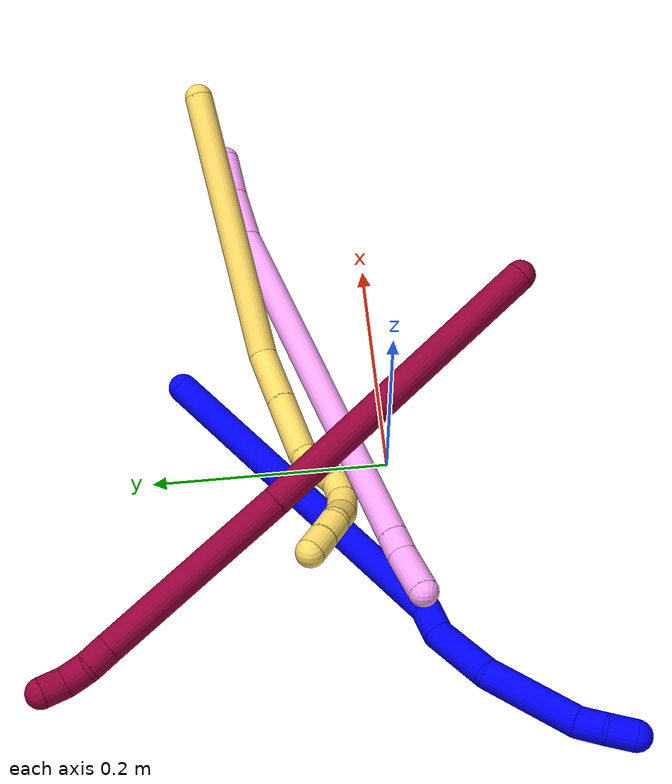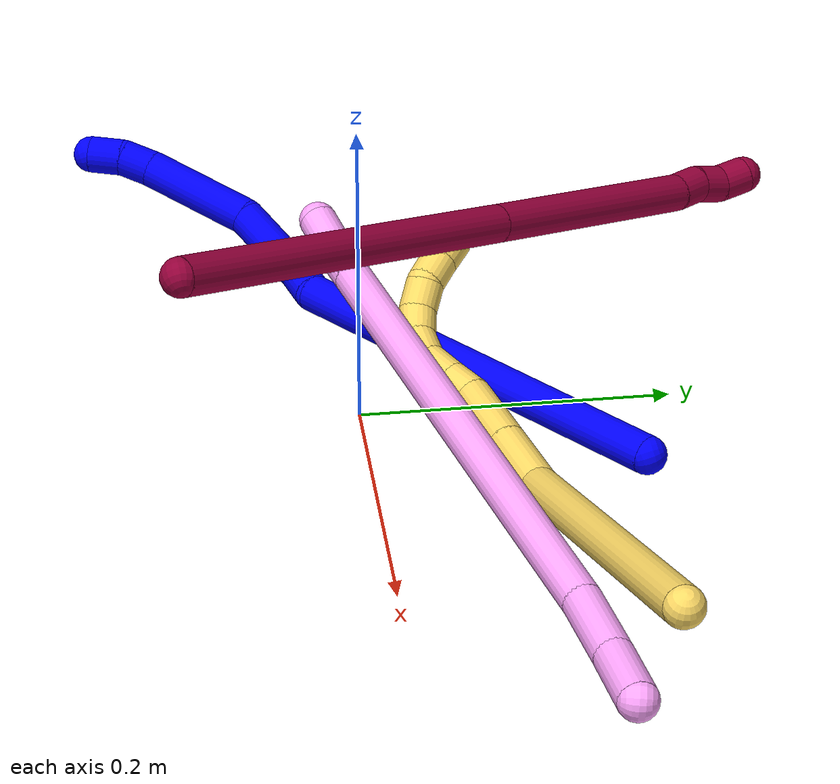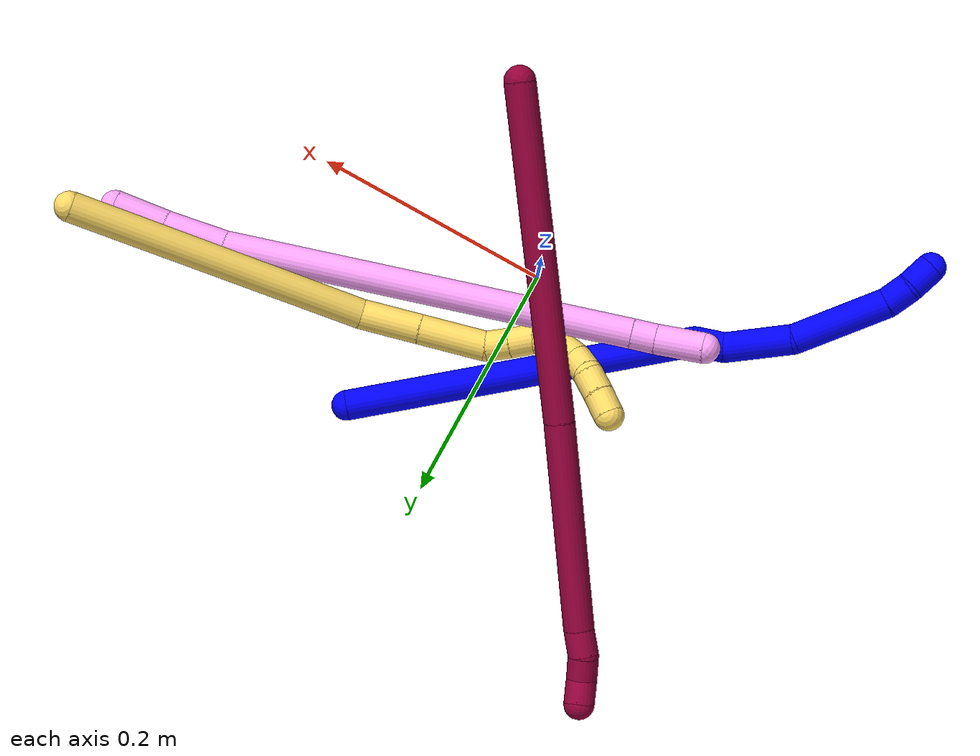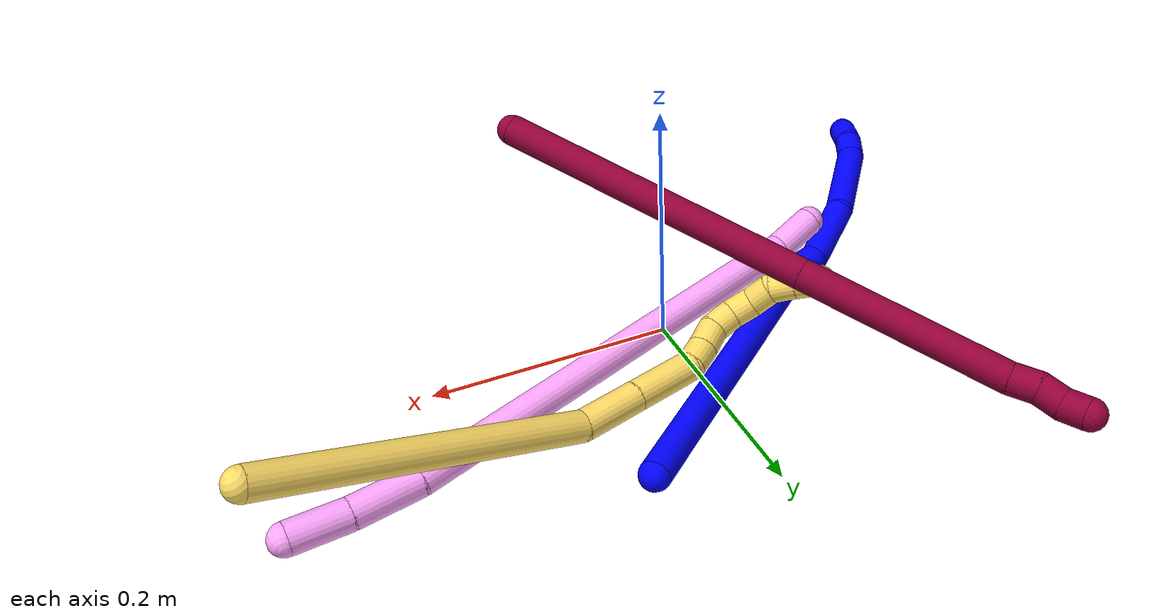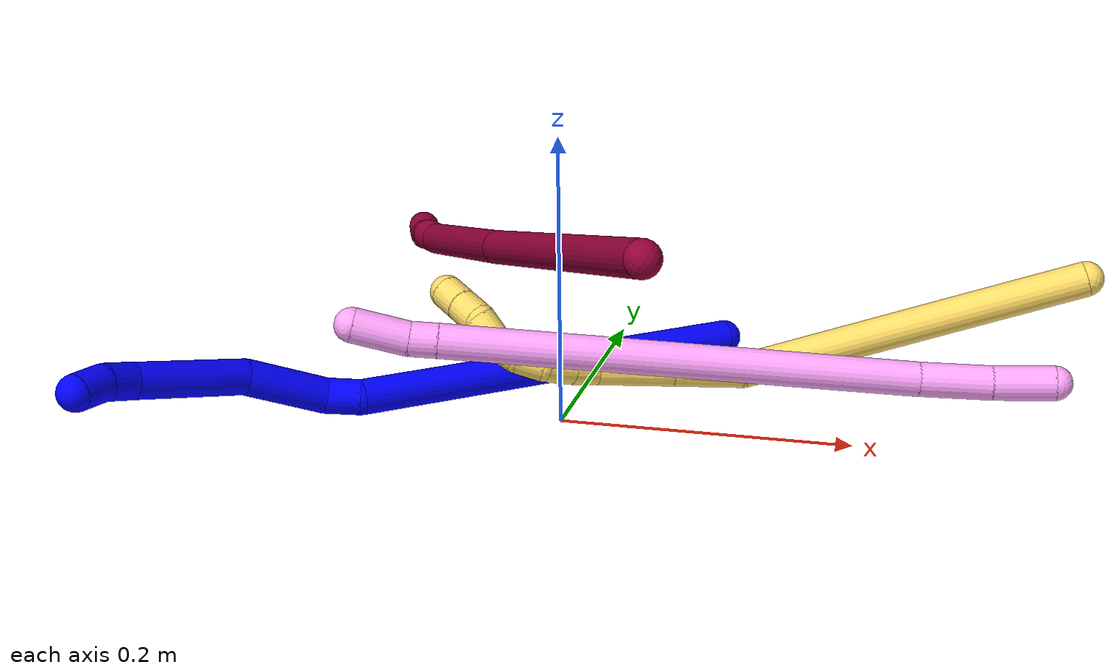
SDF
<sdf version="1.7">
 <world name="default">
  <model name="bin">
   <static>1</static>
   <link name="bottom">
    <collision name="collision-bottom">
     <pose>0 0 -0.01 0 -0 0</pose>
     <geometry><box><size>0.8 0.6 0.02</size></box></geometry>
     <surface>
      <friction><ode><mu>100</mu><mu2>100</mu2></ode></friction>
      <contact><collide_bitmask>65535</collide_bitmask></contact>
     </surface>
    </collision>
   </link>
   <link name="west_wall">
    <collision name="collision-west_wall">
     <pose>-0.41 0 0.1 0 -0 0</pose>
     <geometry><box><size>0.02 0.6 0.2</size></box></geometry>
     <surface>
      <friction><ode><mu>100</mu><mu2>100</mu2></ode></friction>
      <contact><collide_bitmask>65535</collide_bitmask></contact>
     </surface>
    </collision>
   </link>
   <link name="east_wall">
    <collision name="collision-east_wall">
     <pose>0.41 0 0.1 0 -0 0</pose>
     <geometry><box><size>0.02 0.6 0.2</size></box></geometry>
     <surface>
      <friction><ode><mu>100</mu><mu2>100</mu2></ode></friction>
      <contact><collide_bitmask>65535</collide_bitmask></contact>
     </surface>
    </collision>
   </link>
   <link name="south_wall">
    <collision name="collision-south_wall">
     <pose>0 -0.31 0.1 0 -0 0</pose>
     <geometry><box><size>0.8 0.02 0.2</size></box></geometry>
     <surface>
      <friction><ode><mu>100</mu><mu2>100</mu2></ode></friction>
      <contact><collide_bitmask>65535</collide_bitmask></contact>
     </surface>
    </collision>
   </link>
   <link name="north_wall">
    <collision name="collision-north_wall">
     <pose>0 0.31 0.1 0 -0 0</pose>
     <geometry><box><size>0.8 0.02 0.2</size></box></geometry>
     <surface>
      <friction><ode><mu>100</mu><mu2>100</mu2></ode></friction>
      <contact><collide_bitmask>65535</collide_bitmask></contact>
     </surface>
    </collision>
   </link>
  </model>
  <model name="1">
   <static>0</static>
   <link name="1">
    <collision name="collision-cylinder-e_1_1_4">
     <pose>-0.094525 -0.068926 0.08705 0.669722 -0.705259 -0.254724</pose>
     <geometry><cylinder><radius>0.0125</radius><length>0.291639</length></cylinder></geometry>
     <surface>
      <friction><ode><mu>1.16</mu><mu2>1.16</mu2><slip1>0</slip1><slip2>0</slip2></ode></friction>
      <contact><ode><kp>1e+06</kp><kd>1</kd><max_vel>0</max_vel><min_depth>0.001</min_depth></ode></contact>
     </surface>
    </collision>
    <visual name="visual-cylinder-e_1_1_4">
     <pose>-0.094525 -0.068926 0.08705 0.669722 -0.705259 -0.254724</pose>
     <geometry><cylinder><radius>0.0125</radius><length>0.291639</length></cylinder></geometry>
     <material><ambient>0 0 1 1</ambient></material>
    </visual>
    <collision name="collision-cylinder-e_2_4_5">
     <pose>-0.198238 -0.145485 0.17708 1.19846 -0.842543 -0.594006</pose>
     <geometry><cylinder><radius>0.0125</radius><length>0.024623</length></cylinder></geometry>
     <surface>
      <friction><ode><mu>1.16</mu><mu2>1.16</mu2><slip1>0</slip1><slip2>0</slip2></ode></friction>
      <contact><ode><kp>1e+06</kp><kd>1</kd><max_vel>0</max_vel><min_depth>0.001</min_depth></ode></contact>
     </surface>
    </collision>
    <visual name="visual-cylinder-e_2_4_5">
     <pose>-0.198238 -0.145485 0.17708 1.19846 -0.842543 -0.594006</pose>
     <geometry><cylinder><radius>0.0125</radius><length>0.024623</length></cylinder></geometry>
     <material><ambient>0 0 1 1</ambient></material>
    </visual>
    <collision name="collision-cylinder-e_3_5_6">
     <pose>-0.233493 -0.160409 0.191876 0.552977 -1.08139 -0.33748</pose>
     <geometry><cylinder><radius>0.0125</radius><length>0.059067</length></cylinder></geometry>
     <surface>
      <friction><ode><mu>1.16</mu><mu2>1.16</mu2><slip1>0</slip1><slip2>0</slip2></ode></friction>
      <contact><ode><kp>1e+06</kp><kd>1</kd><max_vel>0</max_vel><min_depth>0.001</min_depth></ode></contact>
     </surface>
    </collision>
    <visual name="visual-cylinder-e_3_5_6">
     <pose>-0.233493 -0.160409 0.191876 0.552977 -1.08139 -0.33748</pose>
     <geometry><cylinder><radius>0.0125</radius><length>0.059067</length></cylinder></geometry>
     <material><ambient>0 0 1 1</ambient></material>
    </visual>
    <collision name="collision-cylinder-e_4_6_7">
     <pose>-0.288019 -0.176665 0.230243 0.325569 -0.793081 -0.137323</pose>
     <geometry><cylinder><radius>0.0125</radius><length>0.079884</length></cylinder></geometry>
     <surface>
      <friction><ode><mu>1.16</mu><mu2>1.16</mu2><slip1>0</slip1><slip2>0</slip2></ode></friction>
      <contact><ode><kp>1e+06</kp><kd>1</kd><max_vel>0</max_vel><min_depth>0.001</min_depth></ode></contact>
     </surface>
    </collision>
    <visual name="visual-cylinder-e_4_6_7">
     <pose>-0.288019 -0.176665 0.230243 0.325569 -0.793081 -0.137323</pose>
     <geometry><cylinder><radius>0.0125</radius><length>0.079884</length></cylinder></geometry>
     <material><ambient>0 0 1 1</ambient></material>
    </visual>
    <collision name="collision-cylinder-e_5_7_8">
     <pose>-0.323547 -0.185663 0.265273 0.004011 -0.695082 -0.001453</pose>
     <geometry><cylinder><radius>0.0125</radius><length>0.022073</length></cylinder></geometry>
     <surface>
      <friction><ode><mu>1.16</mu><mu2>1.16</mu2><slip1>0</slip1><slip2>0</slip2></ode></friction>
      <contact><ode><kp>1e+06</kp><kd>1</kd><max_vel>0</max_vel><min_depth>0.001</min_depth></ode></contact>
     </surface>
    </collision>
    <visual name="visual-cylinder-e_5_7_8">
     <pose>-0.323547 -0.185663 0.265273 0.004011 -0.695082 -0.001453</pose>
     <geometry><cylinder><radius>0.0125</radius><length>0.022073</length></cylinder></geometry>
     <material><ambient>0 0 1 1</ambient></material>
    </visual>
    <collision name="collision-cylinder-e_6_8_2">
     <pose>-0.335471 -0.18653 0.283981 0.081236 -0.441825 -0.018253</pose>
     <geometry><cylinder><radius>0.0125</radius><length>0.022714</length></cylinder></geometry>
     <surface>
      <friction><ode><mu>1.16</mu><mu2>1.16</mu2><slip1>0</slip1><slip2>0</slip2></ode></friction>
      <contact><ode><kp>1e+06</kp><kd>1</kd><max_vel>0</max_vel><min_depth>0.001</min_depth></ode></contact>
     </surface>
    </collision>
    <visual name="visual-cylinder-e_6_8_2">
     <pose>-0.335471 -0.18653 0.283981 0.081236 -0.441825 -0.018253</pose>
     <geometry><cylinder><radius>0.0125</radius><length>0.022714</length></cylinder></geometry>
     <material><ambient>0 0 1 1</ambient></material>
    </visual>
    <collision name="collision-sphere-2">
     <pose>-0.340327 -0.187363 0.294214 0 -0 0</pose>
     <geometry><sphere><radius>0.0125</radius></sphere></geometry>
     <surface>
      <friction><ode><mu>1.16</mu><mu2>1.16</mu2><slip1>0</slip1><slip2>0</slip2></ode></friction>
      <contact><ode><kp>1e+06</kp><kd>1</kd><max_vel>0</max_vel><min_depth>0.001</min_depth></ode></contact>
     </surface>
    </collision>
    <visual name="visual-sphere-2">
     <pose>-0.340327 -0.187363 0.294214 0 -0 0</pose>
     <geometry><sphere><radius>0.0125</radius></sphere></geometry>
     <material><ambient>0 0 1 1</ambient></material>
    </visual>
    <collision name="collision-sphere-4">
     <pose>-0.189049 -0.137852 0.174099 0 -0 0</pose>
     <geometry><sphere><radius>0.0125</radius></sphere></geometry>
     <surface>
      <friction><ode><mu>1.16</mu><mu2>1.16</mu2><slip1>0</slip1><slip2>0</slip2></ode></friction>
      <contact><ode><kp>1e+06</kp><kd>1</kd><max_vel>0</max_vel><min_depth>0.001</min_depth></ode></contact>
     </surface>
    </collision>
    <visual name="visual-sphere-4">
     <pose>-0.189049 -0.137852 0.174099 0 -0 0</pose>
     <geometry><sphere><radius>0.0125</radius></sphere></geometry>
     <material><ambient>0 0 1 1</ambient></material>
    </visual>
    <collision name="collision-sphere-1">
     <geometry><sphere><radius>0.0125</radius></sphere></geometry>
     <surface>
      <friction><ode><mu>1.16</mu><mu2>1.16</mu2><slip1>0</slip1><slip2>0</slip2></ode></friction>
      <contact><ode><kp>1e+06</kp><kd>1</kd><max_vel>0</max_vel><min_depth>0.001</min_depth></ode></contact>
     </surface>
    </collision>
    <visual name="visual-sphere-1">
     <geometry><sphere><radius>0.0125</radius></sphere></geometry>
     <material><ambient>0 0 1 1</ambient></material>
    </visual>
    <collision name="collision-sphere-8">
     <pose>-0.330615 -0.185697 0.273749 0 -0 0</pose>
     <geometry><sphere><radius>0.0125</radius></sphere></geometry>
     <surface>
      <friction><ode><mu>1.16</mu><mu2>1.16</mu2><slip1>0</slip1><slip2>0</slip2></ode></friction>
      <contact><ode><kp>1e+06</kp><kd>1</kd><max_vel>0</max_vel><min_depth>0.001</min_depth></ode></contact>
     </surface>
    </collision>
    <visual name="visual-sphere-8">
     <pose>-0.330615 -0.185697 0.273749 0 -0 0</pose>
     <geometry><sphere><radius>0.0125</radius></sphere></geometry>
     <material><ambient>0 0 1 1</ambient></material>
    </visual>
    <collision name="collision-sphere-5">
     <pose>-0.207427 -0.153117 0.180061 0 -0 0</pose>
     <geometry><sphere><radius>0.0125</radius></sphere></geometry>
     <surface>
      <friction><ode><mu>1.16</mu><mu2>1.16</mu2><slip1>0</slip1><slip2>0</slip2></ode></friction>
      <contact><ode><kp>1e+06</kp><kd>1</kd><max_vel>0</max_vel><min_depth>0.001</min_depth></ode></contact>
     </surface>
    </collision>
    <visual name="visual-sphere-5">
     <pose>-0.207427 -0.153117 0.180061 0 -0 0</pose>
     <geometry><sphere><radius>0.0125</radius></sphere></geometry>
     <material><ambient>0 0 1 1</ambient></material>
    </visual>
    <collision name="collision-sphere-6">
     <pose>-0.25956 -0.167701 0.20369 0 -0 0</pose>
     <geometry><sphere><radius>0.0125</radius></sphere></geometry>
     <surface>
      <friction><ode><mu>1.16</mu><mu2>1.16</mu2><slip1>0</slip1><slip2>0</slip2></ode></friction>
      <contact><ode><kp>1e+06</kp><kd>1</kd><max_vel>0</max_vel><min_depth>0.001</min_depth></ode></contact>
     </surface>
    </collision>
    <visual name="visual-sphere-6">
     <pose>-0.25956 -0.167701 0.20369 0 -0 0</pose>
     <geometry><sphere><radius>0.0125</radius></sphere></geometry>
     <material><ambient>0 0 1 1</ambient></material>
    </visual>
    <collision name="collision-sphere-7">
     <pose>-0.316479 -0.185629 0.256797 0 -0 0</pose>
     <geometry><sphere><radius>0.0125</radius></sphere></geometry>
     <surface>
      <friction><ode><mu>1.16</mu><mu2>1.16</mu2><slip1>0</slip1><slip2>0</slip2></ode></friction>
      <contact><ode><kp>1e+06</kp><kd>1</kd><max_vel>0</max_vel><min_depth>0.001</min_depth></ode></contact>
     </surface>
    </collision>
    <visual name="visual-sphere-7">
     <pose>-0.316479 -0.185629 0.256797 0 -0 0</pose>
     <geometry><sphere><radius>0.0125</radius></sphere></geometry>
     <material><ambient>0 0 1 1</ambient></material>
    </visual>
    <inertial>
     <pose>-0.168019 -0.111213 0.143559 0 -0 0</pose>
     <mass>0.5</mass>
     <inertia>
      <ixx>0.001143</ixx>
      <ixy>0</ixy>
      <ixz>0</ixz>
      <iyy>0.001434</iyy>
      <iyz>0</iyz>
      <izz>0.002423</izz>
     </inertia>
    </inertial>
   </link>
   <pose>0.086305 0.168958 0.011499 1.98727 0.80471 0.323793</pose>
  </model>
  <model name="4">
   <static>0</static>
   <link name="4">
    <collision name="collision-cylinder-e_1_1_4">
     <pose>-0.021352 -0.000818 -0.005868 3.00302 -1.30011 -2.95954</pose>
     <geometry><cylinder><radius>0.0125</radius><length>0.044317</length></cylinder></geometry>
     <surface>
      <friction><ode><mu>1.16</mu><mu2>1.16</mu2><slip1>0</slip1><slip2>0</slip2></ode></friction>
      <contact><ode><kp>1e+06</kp><kd>1</kd><max_vel>0</max_vel><min_depth>0.001</min_depth></ode></contact>
     </surface>
    </collision>
    <visual name="visual-cylinder-e_1_1_4">
     <pose>-0.021352 -0.000818 -0.005868 3.00302 -1.30011 -2.95954</pose>
     <geometry><cylinder><radius>0.0125</radius><length>0.044317</length></cylinder></geometry>
     <material><ambient>1 0.65098 0.996078 1</ambient></material>
    </visual>
    <collision name="collision-cylinder-e_2_4_5">
     <pose>-0.067408 -0.004289 -0.020033 2.83221 -1.23182 -2.70786</pose>
     <geometry><cylinder><radius>0.0125</radius><length>0.05239</length></cylinder></geometry>
     <surface>
      <friction><ode><mu>1.16</mu><mu2>1.16</mu2><slip1>0</slip1><slip2>0</slip2></ode></friction>
      <contact><ode><kp>1e+06</kp><kd>1</kd><max_vel>0</max_vel><min_depth>0.001</min_depth></ode></contact>
     </surface>
    </collision>
    <visual name="visual-cylinder-e_2_4_5">
     <pose>-0.067408 -0.004289 -0.020033 2.83221 -1.23182 -2.70786</pose>
     <geometry><cylinder><radius>0.0125</radius><length>0.05239</length></cylinder></geometry>
     <material><ambient>1 0.65098 0.996078 1</ambient></material>
    </visual>
    <collision name="collision-cylinder-e_3_5_6">
     <pose>-0.244983 -0.03426 -0.100627 2.78031 -1.1027 -2.56422</pose>
     <geometry><cylinder><radius>0.0125</radius><length>0.342593</length></cylinder></geometry>
     <surface>
      <friction><ode><mu>1.16</mu><mu2>1.16</mu2><slip1>0</slip1><slip2>0</slip2></ode></friction>
      <contact><ode><kp>1e+06</kp><kd>1</kd><max_vel>0</max_vel><min_depth>0.001</min_depth></ode></contact>
     </surface>
    </collision>
    <visual name="visual-cylinder-e_3_5_6">
     <pose>-0.244983 -0.03426 -0.100627 2.78031 -1.1027 -2.56422</pose>
     <geometry><cylinder><radius>0.0125</radius><length>0.342593</length></cylinder></geometry>
     <material><ambient>1 0.65098 0.996078 1</ambient></material>
    </visual>
    <collision name="collision-cylinder-e_4_6_7">
     <pose>-0.406941 -0.063047 -0.177084 2.80239 -1.11892 -2.60771</pose>
     <geometry><cylinder><radius>0.0125</radius><length>0.020204</length></cylinder></geometry>
     <surface>
      <friction><ode><mu>1.16</mu><mu2>1.16</mu2><slip1>0</slip1><slip2>0</slip2></ode></friction>
      <contact><ode><kp>1e+06</kp><kd>1</kd><max_vel>0</max_vel><min_depth>0.001</min_depth></ode></contact>
     </surface>
    </collision>
    <visual name="visual-cylinder-e_4_6_7">
     <pose>-0.406941 -0.063047 -0.177084 2.80239 -1.11892 -2.60771</pose>
     <geometry><cylinder><radius>0.0125</radius><length>0.020204</length></cylinder></geometry>
     <material><ambient>1 0.65098 0.996078 1</ambient></material>
    </visual>
    <collision name="collision-cylinder-e_5_7_2">
     <pose>-0.43297 -0.071147 -0.190131 2.50048 -0.991193 -2.04008</pose>
     <geometry><cylinder><radius>0.0125</radius><length>0.040496</length></cylinder></geometry>
     <surface>
      <friction><ode><mu>1.16</mu><mu2>1.16</mu2><slip1>0</slip1><slip2>0</slip2></ode></friction>
      <contact><ode><kp>1e+06</kp><kd>1</kd><max_vel>0</max_vel><min_depth>0.001</min_depth></ode></contact>
     </surface>
    </collision>
    <visual name="visual-cylinder-e_5_7_2">
     <pose>-0.43297 -0.071147 -0.190131 2.50048 -0.991193 -2.04008</pose>
     <geometry><cylinder><radius>0.0125</radius><length>0.040496</length></cylinder></geometry>
     <material><ambient>1 0.65098 0.996078 1</ambient></material>
    </visual>
    <collision name="collision-sphere-2">
     <pose>-0.449911 -0.077779 -0.199019 0 -0 0</pose>
     <geometry><sphere><radius>0.0125</radius></sphere></geometry>
     <surface>
      <friction><ode><mu>1.16</mu><mu2>1.16</mu2><slip1>0</slip1><slip2>0</slip2></ode></friction>
      <contact><ode><kp>1e+06</kp><kd>1</kd><max_vel>0</max_vel><min_depth>0.001</min_depth></ode></contact>
     </surface>
    </collision>
    <visual name="visual-sphere-2">
     <pose>-0.449911 -0.077779 -0.199019 0 -0 0</pose>
     <geometry><sphere><radius>0.0125</radius></sphere></geometry>
     <material><ambient>1 0.65098 0.996078 1</ambient></material>
    </visual>
    <collision name="collision-sphere-7">
     <pose>-0.416029 -0.064514 -0.181244 0 -0 0</pose>
     <geometry><sphere><radius>0.0125</radius></sphere></geometry>
     <surface>
      <friction><ode><mu>1.16</mu><mu2>1.16</mu2><slip1>0</slip1><slip2>0</slip2></ode></friction>
      <contact><ode><kp>1e+06</kp><kd>1</kd><max_vel>0</max_vel><min_depth>0.001</min_depth></ode></contact>
     </surface>
    </collision>
    <visual name="visual-sphere-7">
     <pose>-0.416029 -0.064514 -0.181244 0 -0 0</pose>
     <geometry><sphere><radius>0.0125</radius></sphere></geometry>
     <material><ambient>1 0.65098 0.996078 1</ambient></material>
    </visual>
    <collision name="collision-sphere-6">
     <pose>-0.397853 -0.061579 -0.172924 0 -0 0</pose>
     <geometry><sphere><radius>0.0125</radius></sphere></geometry>
     <surface>
      <friction><ode><mu>1.16</mu><mu2>1.16</mu2><slip1>0</slip1><slip2>0</slip2></ode></friction>
      <contact><ode><kp>1e+06</kp><kd>1</kd><max_vel>0</max_vel><min_depth>0.001</min_depth></ode></contact>
     </surface>
    </collision>
    <visual name="visual-sphere-6">
     <pose>-0.397853 -0.061579 -0.172924 0 -0 0</pose>
     <geometry><sphere><radius>0.0125</radius></sphere></geometry>
     <material><ambient>1 0.65098 0.996078 1</ambient></material>
    </visual>
    <collision name="collision-sphere-5">
     <pose>-0.092112 -0.006941 -0.02833 0 -0 0</pose>
     <geometry><sphere><radius>0.0125</radius></sphere></geometry>
     <surface>
      <friction><ode><mu>1.16</mu><mu2>1.16</mu2><slip1>0</slip1><slip2>0</slip2></ode></friction>
      <contact><ode><kp>1e+06</kp><kd>1</kd><max_vel>0</max_vel><min_depth>0.001</min_depth></ode></contact>
     </surface>
    </collision>
    <visual name="visual-sphere-5">
     <pose>-0.092112 -0.006941 -0.02833 0 -0 0</pose>
     <geometry><sphere><radius>0.0125</radius></sphere></geometry>
     <material><ambient>1 0.65098 0.996078 1</ambient></material>
    </visual>
    <collision name="collision-sphere-1">
     <geometry><sphere><radius>0.0125</radius></sphere></geometry>
     <surface>
      <friction><ode><mu>1.16</mu><mu2>1.16</mu2><slip1>0</slip1><slip2>0</slip2></ode></friction>
      <contact><ode><kp>1e+06</kp><kd>1</kd><max_vel>0</max_vel><min_depth>0.001</min_depth></ode></contact>
     </surface>
    </collision>
    <visual name="visual-sphere-1">
     <geometry><sphere><radius>0.0125</radius></sphere></geometry>
     <material><ambient>1 0.65098 0.996078 1</ambient></material>
    </visual>
    <collision name="collision-sphere-4">
     <pose>-0.042704 -0.001637 -0.011736 0 -0 0</pose>
     <geometry><sphere><radius>0.0125</radius></sphere></geometry>
     <surface>
      <friction><ode><mu>1.16</mu><mu2>1.16</mu2><slip1>0</slip1><slip2>0</slip2></ode></friction>
      <contact><ode><kp>1e+06</kp><kd>1</kd><max_vel>0</max_vel><min_depth>0.001</min_depth></ode></contact>
     </surface>
    </collision>
    <visual name="visual-sphere-4">
     <pose>-0.042704 -0.001637 -0.011736 0 -0 0</pose>
     <geometry><sphere><radius>0.0125</radius></sphere></geometry>
     <material><ambient>1 0.65098 0.996078 1</ambient></material>
    </visual>
    <inertial>
     <pose>-0.228325 -0.032306 -0.094122 0 -0 0</pose>
     <mass>0.5</mass>
     <inertia>
      <ixx>-0.002151</ixx>
      <ixy>0</ixy>
      <ixz>0</ixz>
      <iyy>0.002405</iyy>
      <iyz>0</iyz>
      <izz>0.003557</izz>
     </inertia>
    </inertial>
   </link>
   <pose>0.332732 0.116941 0.01299 -1.63393 -0.089514 -0.14062</pose>
  </model>
  <model name="5">
   <static>0</static>
   <link name="5">
    <collision name="collision-cylinder-e_1_1_4">
     <pose>-0.096949 -0.008967 -0.079108 3.02872 -0.883261 -2.90372</pose>
     <geometry><cylinder><radius>0.0125</radius><length>0.250898</length></cylinder></geometry>
     <surface>
      <friction><ode><mu>1.16</mu><mu2>1.16</mu2><slip1>0</slip1><slip2>0</slip2></ode></friction>
      <contact><ode><kp>1e+06</kp><kd>1</kd><max_vel>0</max_vel><min_depth>0.001</min_depth></ode></contact>
     </surface>
    </collision>
    <visual name="visual-cylinder-e_1_1_4">
     <pose>-0.096949 -0.008967 -0.079108 3.02872 -0.883261 -2.90372</pose>
     <geometry><cylinder><radius>0.0125</radius><length>0.250898</length></cylinder></geometry>
     <material><ambient>1 0.858824 0.4 1</ambient></material>
    </visual>
    <collision name="collision-cylinder-e_2_4_5">
     <pose>-0.217229 -0.02195 -0.166777 2.70308 -1.18573 -2.50272</pose>
     <geometry><cylinder><radius>0.0125</radius><length>0.05035</length></cylinder></geometry>
     <surface>
      <friction><ode><mu>1.16</mu><mu2>1.16</mu2><slip1>0</slip1><slip2>0</slip2></ode></friction>
      <contact><ode><kp>1e+06</kp><kd>1</kd><max_vel>0</max_vel><min_depth>0.001</min_depth></ode></contact>
     </surface>
    </collision>
    <visual name="visual-cylinder-e_2_4_5">
     <pose>-0.217229 -0.02195 -0.166777 2.70308 -1.18573 -2.50272</pose>
     <geometry><cylinder><radius>0.0125</radius><length>0.05035</length></cylinder></geometry>
     <material><ambient>1 0.858824 0.4 1</ambient></material>
    </visual>
    <collision name="collision-cylinder-e_3_5_6">
     <pose>-0.266532 -0.030451 -0.184867 2.70158 -1.18556 -2.50051</pose>
     <geometry><cylinder><radius>0.0125</radius><length>0.056053</length></cylinder></geometry>
     <surface>
      <friction><ode><mu>1.16</mu><mu2>1.16</mu2><slip1>0</slip1><slip2>0</slip2></ode></friction>
      <contact><ode><kp>1e+06</kp><kd>1</kd><max_vel>0</max_vel><min_depth>0.001</min_depth></ode></contact>
     </surface>
    </collision>
    <visual name="visual-cylinder-e_3_5_6">
     <pose>-0.266532 -0.030451 -0.184867 2.70158 -1.18556 -2.50051</pose>
     <geometry><cylinder><radius>0.0125</radius><length>0.056053</length></cylinder></geometry>
     <material><ambient>1 0.858824 0.4 1</ambient></material>
    </visual>
    <collision name="collision-cylinder-e_4_6_7">
     <pose>-0.301224 -0.040157 -0.196144 1.894 -1.00758 -1.30729</pose>
     <geometry><cylinder><radius>0.0125</radius><length>0.020623</length></cylinder></geometry>
     <surface>
      <friction><ode><mu>1.16</mu><mu2>1.16</mu2><slip1>0</slip1><slip2>0</slip2></ode></friction>
      <contact><ode><kp>1e+06</kp><kd>1</kd><max_vel>0</max_vel><min_depth>0.001</min_depth></ode></contact>
     </surface>
    </collision>
    <visual name="visual-cylinder-e_4_6_7">
     <pose>-0.301224 -0.040157 -0.196144 1.894 -1.00758 -1.30729</pose>
     <geometry><cylinder><radius>0.0125</radius><length>0.020623</length></cylinder></geometry>
     <material><ambient>1 0.858824 0.4 1</ambient></material>
    </visual>
    <collision name="collision-cylinder-e_5_7_8">
     <pose>-0.319217 -0.051265 -0.198629 1.6953 -1.00166 -1.11021</pose>
     <geometry><cylinder><radius>0.0125</radius><length>0.022021</length></cylinder></geometry>
     <surface>
      <friction><ode><mu>1.16</mu><mu2>1.16</mu2><slip1>0</slip1><slip2>0</slip2></ode></friction>
      <contact><ode><kp>1e+06</kp><kd>1</kd><max_vel>0</max_vel><min_depth>0.001</min_depth></ode></contact>
     </surface>
    </collision>
    <visual name="visual-cylinder-e_5_7_8">
     <pose>-0.319217 -0.051265 -0.198629 1.6953 -1.00166 -1.11021</pose>
     <geometry><cylinder><radius>0.0125</radius><length>0.022021</length></cylinder></geometry>
     <material><ambient>1 0.858824 0.4 1</ambient></material>
    </visual>
    <collision name="collision-cylinder-e_6_8_9">
     <pose>-0.338436 -0.058117 -0.200097 2.21958 -1.44972 -2.1194</pose>
     <geometry><cylinder><radius>0.0125</radius><length>0.020034</length></cylinder></geometry>
     <surface>
      <friction><ode><mu>1.16</mu><mu2>1.16</mu2><slip1>0</slip1><slip2>0</slip2></ode></friction>
      <contact><ode><kp>1e+06</kp><kd>1</kd><max_vel>0</max_vel><min_depth>0.001</min_depth></ode></contact>
     </surface>
    </collision>
    <visual name="visual-cylinder-e_6_8_9">
     <pose>-0.338436 -0.058117 -0.200097 2.21958 -1.44972 -2.1194</pose>
     <geometry><cylinder><radius>0.0125</radius><length>0.020034</length></cylinder></geometry>
     <material><ambient>1 0.858824 0.4 1</ambient></material>
    </visual>
    <collision name="collision-cylinder-e_7_9_10">
     <pose>-0.358124 -0.056899 -0.200127 -1.25969 -1.33978 1.04716</pose>
     <geometry><cylinder><radius>0.0125</radius><length>0.02002</length></cylinder></geometry>
     <surface>
      <friction><ode><mu>1.16</mu><mu2>1.16</mu2><slip1>0</slip1><slip2>0</slip2></ode></friction>
      <contact><ode><kp>1e+06</kp><kd>1</kd><max_vel>0</max_vel><min_depth>0.001</min_depth></ode></contact>
     </surface>
    </collision>
    <visual name="visual-cylinder-e_7_9_10">
     <pose>-0.358124 -0.056899 -0.200127 -1.25969 -1.33978 1.04716</pose>
     <geometry><cylinder><radius>0.0125</radius><length>0.02002</length></cylinder></geometry>
     <material><ambient>1 0.858824 0.4 1</ambient></material>
    </visual>
    <collision name="collision-cylinder-e_8_10_11">
     <pose>-0.376214 -0.050715 -0.195637 -0.81292 -0.987245 0.455161</pose>
     <geometry><cylinder><radius>0.0125</radius><length>0.02</length></cylinder></geometry>
     <surface>
      <friction><ode><mu>1.16</mu><mu2>1.16</mu2><slip1>0</slip1><slip2>0</slip2></ode></friction>
      <contact><ode><kp>1e+06</kp><kd>1</kd><max_vel>0</max_vel><min_depth>0.001</min_depth></ode></contact>
     </surface>
    </collision>
    <visual name="visual-cylinder-e_8_10_11">
     <pose>-0.376214 -0.050715 -0.195637 -0.81292 -0.987245 0.455161</pose>
     <geometry><cylinder><radius>0.0125</radius><length>0.02</length></cylinder></geometry>
     <material><ambient>1 0.858824 0.4 1</ambient></material>
    </visual>
    <collision name="collision-cylinder-e_9_11_12">
     <pose>-0.392517 -0.040659 -0.191686 -1.54366 -0.920283 0.898866</pose>
     <geometry><cylinder><radius>0.0125</radius><length>0.02</length></cylinder></geometry>
     <surface>
      <friction><ode><mu>1.16</mu><mu2>1.16</mu2><slip1>0</slip1><slip2>0</slip2></ode></friction>
      <contact><ode><kp>1e+06</kp><kd>1</kd><max_vel>0</max_vel><min_depth>0.001</min_depth></ode></contact>
     </surface>
    </collision>
    <visual name="visual-cylinder-e_9_11_12">
     <pose>-0.392517 -0.040659 -0.191686 -1.54366 -0.920283 0.898866</pose>
     <geometry><cylinder><radius>0.0125</radius><length>0.02</length></cylinder></geometry>
     <material><ambient>1 0.858824 0.4 1</ambient></material>
    </visual>
    <collision name="collision-cylinder-e_10_12_2">
     <pose>-0.408174 -0.028225 -0.191567 -1.57795 -0.878759 0.884277</pose>
     <geometry><cylinder><radius>0.0125</radius><length>0.02</length></cylinder></geometry>
     <surface>
      <friction><ode><mu>1.16</mu><mu2>1.16</mu2><slip1>0</slip1><slip2>0</slip2></ode></friction>
      <contact><ode><kp>1e+06</kp><kd>1</kd><max_vel>0</max_vel><min_depth>0.001</min_depth></ode></contact>
     </surface>
    </collision>
    <visual name="visual-cylinder-e_10_12_2">
     <pose>-0.408174 -0.028225 -0.191567 -1.57795 -0.878759 0.884277</pose>
     <geometry><cylinder><radius>0.0125</radius><length>0.02</length></cylinder></geometry>
     <material><ambient>1 0.858824 0.4 1</ambient></material>
    </visual>
    <collision name="collision-sphere-2">
     <pose>-0.415873 -0.021844 -0.191613 0 -0 0</pose>
     <geometry><sphere><radius>0.0125</radius></sphere></geometry>
     <surface>
      <friction><ode><mu>1.16</mu><mu2>1.16</mu2><slip1>0</slip1><slip2>0</slip2></ode></friction>
      <contact><ode><kp>1e+06</kp><kd>1</kd><max_vel>0</max_vel><min_depth>0.001</min_depth></ode></contact>
     </surface>
    </collision>
    <visual name="visual-sphere-2">
     <pose>-0.415873 -0.021844 -0.191613 0 -0 0</pose>
     <geometry><sphere><radius>0.0125</radius></sphere></geometry>
     <material><ambient>1 0.858824 0.4 1</ambient></material>
    </visual>
    <collision name="collision-sphere-12">
     <pose>-0.400474 -0.034606 -0.191521 0 -0 0</pose>
     <geometry><sphere><radius>0.0125</radius></sphere></geometry>
     <surface>
      <friction><ode><mu>1.16</mu><mu2>1.16</mu2><slip1>0</slip1><slip2>0</slip2></ode></friction>
      <contact><ode><kp>1e+06</kp><kd>1</kd><max_vel>0</max_vel><min_depth>0.001</min_depth></ode></contact>
     </surface>
    </collision>
    <visual name="visual-sphere-12">
     <pose>-0.400474 -0.034606 -0.191521 0 -0 0</pose>
     <geometry><sphere><radius>0.0125</radius></sphere></geometry>
     <material><ambient>1 0.858824 0.4 1</ambient></material>
    </visual>
    <collision name="collision-sphere-11">
     <pose>-0.384559 -0.046713 -0.19185 0 -0 0</pose>
     <geometry><sphere><radius>0.0125</radius></sphere></geometry>
     <surface>
      <friction><ode><mu>1.16</mu><mu2>1.16</mu2><slip1>0</slip1><slip2>0</slip2></ode></friction>
      <contact><ode><kp>1e+06</kp><kd>1</kd><max_vel>0</max_vel><min_depth>0.001</min_depth></ode></contact>
     </surface>
    </collision>
    <visual name="visual-sphere-11">
     <pose>-0.384559 -0.046713 -0.19185 0 -0 0</pose>
     <geometry><sphere><radius>0.0125</radius></sphere></geometry>
     <material><ambient>1 0.858824 0.4 1</ambient></material>
    </visual>
    <collision name="collision-sphere-10">
     <pose>-0.367868 -0.054717 -0.199425 0 -0 0</pose>
     <geometry><sphere><radius>0.0125</radius></sphere></geometry>
     <surface>
      <friction><ode><mu>1.16</mu><mu2>1.16</mu2><slip1>0</slip1><slip2>0</slip2></ode></friction>
      <contact><ode><kp>1e+06</kp><kd>1</kd><max_vel>0</max_vel><min_depth>0.001</min_depth></ode></contact>
     </surface>
    </collision>
    <visual name="visual-sphere-10">
     <pose>-0.367868 -0.054717 -0.199425 0 -0 0</pose>
     <geometry><sphere><radius>0.0125</radius></sphere></geometry>
     <material><ambient>1 0.858824 0.4 1</ambient></material>
    </visual>
    <collision name="collision-sphere-9">
     <pose>-0.34838 -0.059081 -0.200828 0 -0 0</pose>
     <geometry><sphere><radius>0.0125</radius></sphere></geometry>
     <surface>
      <friction><ode><mu>1.16</mu><mu2>1.16</mu2><slip1>0</slip1><slip2>0</slip2></ode></friction>
      <contact><ode><kp>1e+06</kp><kd>1</kd><max_vel>0</max_vel><min_depth>0.001</min_depth></ode></contact>
     </surface>
    </collision>
    <visual name="visual-sphere-9">
     <pose>-0.34838 -0.059081 -0.200828 0 -0 0</pose>
     <geometry><sphere><radius>0.0125</radius></sphere></geometry>
     <material><ambient>1 0.858824 0.4 1</ambient></material>
    </visual>
    <collision name="collision-sphere-4">
     <pose>-0.193897 -0.017935 -0.158215 0 -0 0</pose>
     <geometry><sphere><radius>0.0125</radius></sphere></geometry>
     <surface>
      <friction><ode><mu>1.16</mu><mu2>1.16</mu2><slip1>0</slip1><slip2>0</slip2></ode></friction>
      <contact><ode><kp>1e+06</kp><kd>1</kd><max_vel>0</max_vel><min_depth>0.001</min_depth></ode></contact>
     </surface>
    </collision>
    <visual name="visual-sphere-4">
     <pose>-0.193897 -0.017935 -0.158215 0 -0 0</pose>
     <geometry><sphere><radius>0.0125</radius></sphere></geometry>
     <material><ambient>1 0.858824 0.4 1</ambient></material>
    </visual>
    <collision name="collision-sphere-1">
     <geometry><sphere><radius>0.0125</radius></sphere></geometry>
     <surface>
      <friction><ode><mu>1.16</mu><mu2>1.16</mu2><slip1>0</slip1><slip2>0</slip2></ode></friction>
      <contact><ode><kp>1e+06</kp><kd>1</kd><max_vel>0</max_vel><min_depth>0.001</min_depth></ode></contact>
     </surface>
    </collision>
    <visual name="visual-sphere-1">
     <geometry><sphere><radius>0.0125</radius></sphere></geometry>
     <material><ambient>1 0.858824 0.4 1</ambient></material>
    </visual>
    <collision name="collision-sphere-8">
     <pose>-0.328492 -0.057153 -0.199366 0 -0 0</pose>
     <geometry><sphere><radius>0.0125</radius></sphere></geometry>
     <surface>
      <friction><ode><mu>1.16</mu><mu2>1.16</mu2><slip1>0</slip1><slip2>0</slip2></ode></friction>
      <contact><ode><kp>1e+06</kp><kd>1</kd><max_vel>0</max_vel><min_depth>0.001</min_depth></ode></contact>
     </surface>
    </collision>
    <visual name="visual-sphere-8">
     <pose>-0.328492 -0.057153 -0.199366 0 -0 0</pose>
     <geometry><sphere><radius>0.0125</radius></sphere></geometry>
     <material><ambient>1 0.858824 0.4 1</ambient></material>
    </visual>
    <collision name="collision-sphere-5">
     <pose>-0.24056 -0.025965 -0.175338 0 -0 0</pose>
     <geometry><sphere><radius>0.0125</radius></sphere></geometry>
     <surface>
      <friction><ode><mu>1.16</mu><mu2>1.16</mu2><slip1>0</slip1><slip2>0</slip2></ode></friction>
      <contact><ode><kp>1e+06</kp><kd>1</kd><max_vel>0</max_vel><min_depth>0.001</min_depth></ode></contact>
     </surface>
    </collision>
    <visual name="visual-sphere-5">
     <pose>-0.24056 -0.025965 -0.175338 0 -0 0</pose>
     <geometry><sphere><radius>0.0125</radius></sphere></geometry>
     <material><ambient>1 0.858824 0.4 1</ambient></material>
    </visual>
    <collision name="collision-sphere-6">
     <pose>-0.292505 -0.034937 -0.194395 0 -0 0</pose>
     <geometry><sphere><radius>0.0125</radius></sphere></geometry>
     <surface>
      <friction><ode><mu>1.16</mu><mu2>1.16</mu2><slip1>0</slip1><slip2>0</slip2></ode></friction>
      <contact><ode><kp>1e+06</kp><kd>1</kd><max_vel>0</max_vel><min_depth>0.001</min_depth></ode></contact>
     </surface>
    </collision>
    <visual name="visual-sphere-6">
     <pose>-0.292505 -0.034937 -0.194395 0 -0 0</pose>
     <geometry><sphere><radius>0.0125</radius></sphere></geometry>
     <material><ambient>1 0.858824 0.4 1</ambient></material>
    </visual>
    <collision name="collision-sphere-7">
     <pose>-0.309942 -0.045377 -0.197892 0 -0 0</pose>
     <geometry><sphere><radius>0.0125</radius></sphere></geometry>
     <surface>
      <friction><ode><mu>1.16</mu><mu2>1.16</mu2><slip1>0</slip1><slip2>0</slip2></ode></friction>
      <contact><ode><kp>1e+06</kp><kd>1</kd><max_vel>0</max_vel><min_depth>0.001</min_depth></ode></contact>
     </surface>
    </collision>
    <visual name="visual-sphere-7">
     <pose>-0.309942 -0.045377 -0.197892 0 -0 0</pose>
     <geometry><sphere><radius>0.0125</radius></sphere></geometry>
     <material><ambient>1 0.858824 0.4 1</ambient></material>
    </visual>
    <inertial>
     <pose>-0.201863 -0.023429 -0.13324 0 -0 0</pose>
     <mass>0.5</mass>
     <inertia>
      <ixx>-0.001061</ixx>
      <ixy>0</ixy>
      <ixz>0</ixz>
      <iyy>0.001138</iyy>
      <iyz>0</iyz>
      <izz>0.001145</izz>
     </inertia>
    </inertial>
   </link>
   <pose>0.348921 0.136031 0.085914 0.008506 0.383036 0.092735</pose>
  </model>
  <model name="8">
   <static>0</static>
   <link name="8">
    <collision name="collision-cylinder-e_1_1_4">
     <pose>-0.075238 0.105137 0.033968 -1.2583 -0.597834 0.441251</pose>
     <geometry><cylinder><radius>0.0125</radius><length>0.267344</length></cylinder></geometry>
     <surface>
      <friction><ode><mu>1.16</mu><mu2>1.16</mu2><slip1>0</slip1><slip2>0</slip2></ode></friction>
      <contact><ode><kp>1e+06</kp><kd>1</kd><max_vel>0</max_vel><min_depth>0.001</min_depth></ode></contact>
     </surface>
    </collision>
    <visual name="visual-cylinder-e_1_1_4">
     <pose>-0.075238 0.105137 0.033968 -1.2583 -0.597834 0.441251</pose>
     <geometry><cylinder><radius>0.0125</radius><length>0.267344</length></cylinder></geometry>
     <material><ambient>0.584314 0 0.227451 1</ambient></material>
    </visual>
    <collision name="collision-cylinder-e_2_4_5">
     <pose>-0.196856 0.278661 0.089014 -1.27182 -0.575042 0.429853</pose>
     <geometry><cylinder><radius>0.0125</radius><length>0.170555</length></cylinder></geometry>
     <surface>
      <friction><ode><mu>1.16</mu><mu2>1.16</mu2><slip1>0</slip1><slip2>0</slip2></ode></friction>
      <contact><ode><kp>1e+06</kp><kd>1</kd><max_vel>0</max_vel><min_depth>0.001</min_depth></ode></contact>
     </surface>
    </collision>
    <visual name="visual-cylinder-e_2_4_5">
     <pose>-0.196856 0.278661 0.089014 -1.27182 -0.575042 0.429853</pose>
     <geometry><cylinder><radius>0.0125</radius><length>0.170555</length></cylinder></geometry>
     <material><ambient>0.584314 0 0.227451 1</ambient></material>
    </visual>
    <collision name="collision-cylinder-e_3_5_6">
     <pose>-0.24831 0.35577 0.11425 -1.12589 -0.483594 0.30879</pose>
     <geometry><cylinder><radius>0.0125</radius><length>0.021825</length></cylinder></geometry>
     <surface>
      <friction><ode><mu>1.16</mu><mu2>1.16</mu2><slip1>0</slip1><slip2>0</slip2></ode></friction>
      <contact><ode><kp>1e+06</kp><kd>1</kd><max_vel>0</max_vel><min_depth>0.001</min_depth></ode></contact>
     </surface>
    </collision>
    <visual name="visual-cylinder-e_3_5_6">
     <pose>-0.24831 0.35577 0.11425 -1.12589 -0.483594 0.30879</pose>
     <geometry><cylinder><radius>0.0125</radius><length>0.021825</length></cylinder></geometry>
     <material><ambient>0.584314 0 0.227451 1</ambient></material>
    </visual>
    <collision name="collision-cylinder-e_4_6_7">
     <pose>-0.258481 0.373078 0.119341 -1.46256 -0.533074 0.480484</pose>
     <geometry><cylinder><radius>0.0125</radius><length>0.020059</length></cylinder></geometry>
     <surface>
      <friction><ode><mu>1.16</mu><mu2>1.16</mu2><slip1>0</slip1><slip2>0</slip2></ode></friction>
      <contact><ode><kp>1e+06</kp><kd>1</kd><max_vel>0</max_vel><min_depth>0.001</min_depth></ode></contact>
     </surface>
    </collision>
    <visual name="visual-cylinder-e_4_6_7">
     <pose>-0.258481 0.373078 0.119341 -1.46256 -0.533074 0.480484</pose>
     <geometry><cylinder><radius>0.0125</radius><length>0.020059</length></cylinder></geometry>
     <material><ambient>0.584314 0 0.227451 1</ambient></material>
    </visual>
    <collision name="collision-cylinder-e_5_7_2">
     <pose>-0.265675 0.391203 0.122882 -1.30388 -0.209026 0.159786</pose>
     <geometry><cylinder><radius>0.0125</radius><length>0.020216</length></cylinder></geometry>
     <surface>
      <friction><ode><mu>1.16</mu><mu2>1.16</mu2><slip1>0</slip1><slip2>0</slip2></ode></friction>
      <contact><ode><kp>1e+06</kp><kd>1</kd><max_vel>0</max_vel><min_depth>0.001</min_depth></ode></contact>
     </surface>
    </collision>
    <visual name="visual-cylinder-e_5_7_2">
     <pose>-0.265675 0.391203 0.122882 -1.30388 -0.209026 0.159786</pose>
     <geometry><cylinder><radius>0.0125</radius><length>0.020216</length></cylinder></geometry>
     <material><ambient>0.584314 0 0.227451 1</ambient></material>
    </visual>
    <collision name="collision-sphere-2">
     <pose>-0.267772 0.400741 0.12549 0 -0 0</pose>
     <geometry><sphere><radius>0.0125</radius></sphere></geometry>
     <surface>
      <friction><ode><mu>1.16</mu><mu2>1.16</mu2><slip1>0</slip1><slip2>0</slip2></ode></friction>
      <contact><ode><kp>1e+06</kp><kd>1</kd><max_vel>0</max_vel><min_depth>0.001</min_depth></ode></contact>
     </surface>
    </collision>
    <visual name="visual-sphere-2">
     <pose>-0.267772 0.400741 0.12549 0 -0 0</pose>
     <geometry><sphere><radius>0.0125</radius></sphere></geometry>
     <material><ambient>0.584314 0 0.227451 1</ambient></material>
    </visual>
    <collision name="collision-sphere-7">
     <pose>-0.263577 0.381665 0.120274 0 -0 0</pose>
     <geometry><sphere><radius>0.0125</radius></sphere></geometry>
     <surface>
      <friction><ode><mu>1.16</mu><mu2>1.16</mu2><slip1>0</slip1><slip2>0</slip2></ode></friction>
      <contact><ode><kp>1e+06</kp><kd>1</kd><max_vel>0</max_vel><min_depth>0.001</min_depth></ode></contact>
     </surface>
    </collision>
    <visual name="visual-sphere-7">
     <pose>-0.263577 0.381665 0.120274 0 -0 0</pose>
     <geometry><sphere><radius>0.0125</radius></sphere></geometry>
     <material><ambient>0.584314 0 0.227451 1</ambient></material>
    </visual>
    <collision name="collision-sphere-6">
     <pose>-0.253384 0.36449 0.118408 0 -0 0</pose>
     <geometry><sphere><radius>0.0125</radius></sphere></geometry>
     <surface>
      <friction><ode><mu>1.16</mu><mu2>1.16</mu2><slip1>0</slip1><slip2>0</slip2></ode></friction>
      <contact><ode><kp>1e+06</kp><kd>1</kd><max_vel>0</max_vel><min_depth>0.001</min_depth></ode></contact>
     </surface>
    </collision>
    <visual name="visual-sphere-6">
     <pose>-0.253384 0.36449 0.118408 0 -0 0</pose>
     <geometry><sphere><radius>0.0125</radius></sphere></geometry>
     <material><ambient>0.584314 0 0.227451 1</ambient></material>
    </visual>
    <collision name="collision-sphere-5">
     <pose>-0.243236 0.347049 0.110092 0 -0 0</pose>
     <geometry><sphere><radius>0.0125</radius></sphere></geometry>
     <surface>
      <friction><ode><mu>1.16</mu><mu2>1.16</mu2><slip1>0</slip1><slip2>0</slip2></ode></friction>
      <contact><ode><kp>1e+06</kp><kd>1</kd><max_vel>0</max_vel><min_depth>0.001</min_depth></ode></contact>
     </surface>
    </collision>
    <visual name="visual-sphere-5">
     <pose>-0.243236 0.347049 0.110092 0 -0 0</pose>
     <geometry><sphere><radius>0.0125</radius></sphere></geometry>
     <material><ambient>0.584314 0 0.227451 1</ambient></material>
    </visual>
    <collision name="collision-sphere-1">
     <geometry><sphere><radius>0.0125</radius></sphere></geometry>
     <surface>
      <friction><ode><mu>1.16</mu><mu2>1.16</mu2><slip1>0</slip1><slip2>0</slip2></ode></friction>
      <contact><ode><kp>1e+06</kp><kd>1</kd><max_vel>0</max_vel><min_depth>0.001</min_depth></ode></contact>
     </surface>
    </collision>
    <visual name="visual-sphere-1">
     <geometry><sphere><radius>0.0125</radius></sphere></geometry>
     <material><ambient>0.584314 0 0.227451 1</ambient></material>
    </visual>
    <collision name="collision-sphere-4">
     <pose>-0.150476 0.210273 0.067935 0 -0 0</pose>
     <geometry><sphere><radius>0.0125</radius></sphere></geometry>
     <surface>
      <friction><ode><mu>1.16</mu><mu2>1.16</mu2><slip1>0</slip1><slip2>0</slip2></ode></friction>
      <contact><ode><kp>1e+06</kp><kd>1</kd><max_vel>0</max_vel><min_depth>0.001</min_depth></ode></contact>
     </surface>
    </collision>
    <visual name="visual-sphere-4">
     <pose>-0.150476 0.210273 0.067935 0 -0 0</pose>
     <geometry><sphere><radius>0.0125</radius></sphere></geometry>
     <material><ambient>0.584314 0 0.227451 1</ambient></material>
    </visual>
    <inertial>
     <pose>-0.139329 0.197583 0.063269 0 -0 0</pose>
     <mass>0.5</mass>
     <inertia>
      <ixx>0.002215</ixx>
      <ixy>0</ixy>
      <ixz>0</ixz>
      <iyy>0.001763</iyy>
      <iyz>0</iyz>
      <izz>-0.000459</izz>
     </inertia>
    </inertial>
   </link>
   <pose>0.080461 -0.113055 0.154335 0.22314 -0.976223 -0.125593</pose>
  </model>
 </world>
</sdf>
